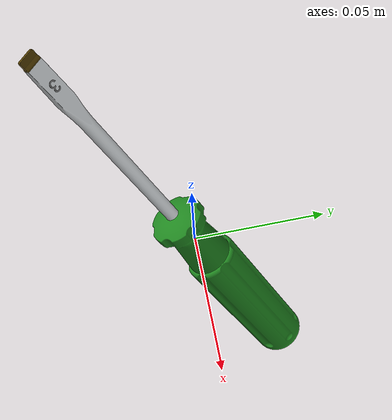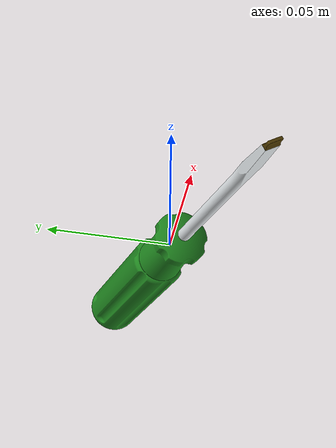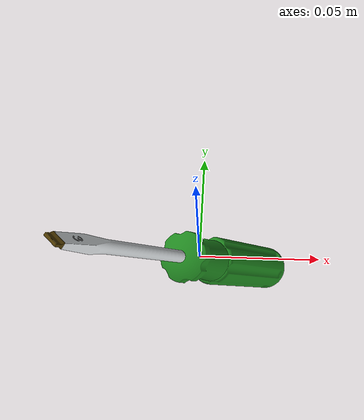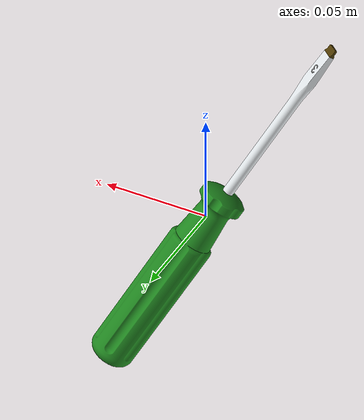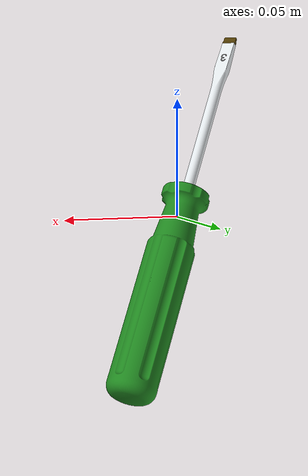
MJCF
<mujoco model="target">
  <compiler meshdir="assets" texturedir="assets" autolimits="true"/>
  <default>
    <default class="visual">
      <geom group="2" type="mesh" contype="0" conaffinity="0"/>
    </default>
    <default class="collision">
      <geom group="3" type="mesh"/>
    </default>
  </default>
  <asset>
    <material name="81,60,4" specular="0.0" shininess="0.0" rgba="0.317647 0.235294 0.015686 1.000000"/>
    <material name="229,234,237" specular="0.4588236666666667" shininess="0.600000038" rgba="0.898039 0.917647 0.929412 1.000000"/>
    <material name="128,128,128" specular="0.0" shininess="0.0" rgba="0.501961 0.501961 0.501961 1.000000"/>
    <material name="33,138,33" specular="1.0" shininess="1.0" rgba="0.129412 0.541176 0.129412 1.000000"/>
    <mesh file="object_0.obj"/>
    <mesh file="object_1.obj"/>
    <mesh file="object_2.obj"/>
    <mesh file="object_3.obj"/>
  </asset>
  <worldbody>
    <body name="object">
      <geom mesh="object_0" material="33,138,33" class="visual"/>
      <geom mesh="object_1" material="128,128,128" class="visual"/>
      <geom mesh="object_2" material="229,234,237" class="visual"/>
      <geom mesh="object_3" material="81,60,4" class="visual"/>
      <geom mesh="object_0" class="collision"/>
      <geom mesh="object_1" class="collision"/>
      <geom mesh="object_2" class="collision"/>
      <geom mesh="object_3" class="collision"/>
    </body>
  </worldbody>
</mujoco>
